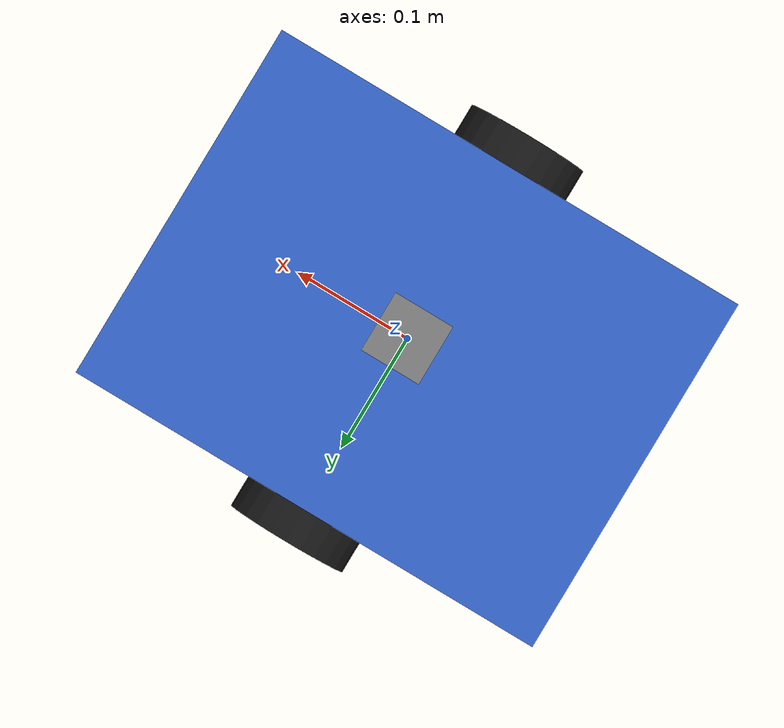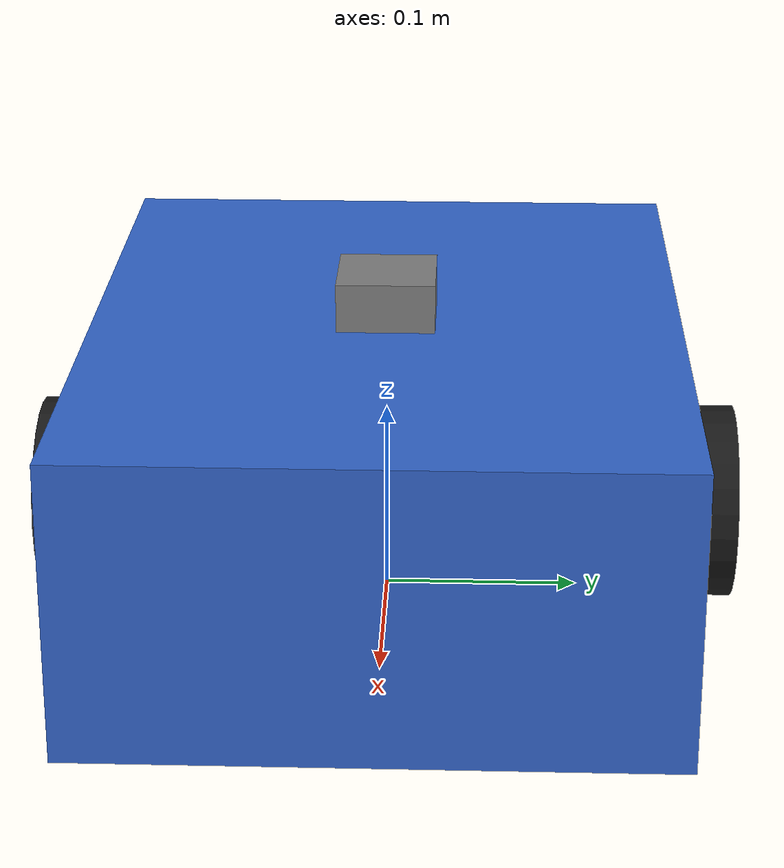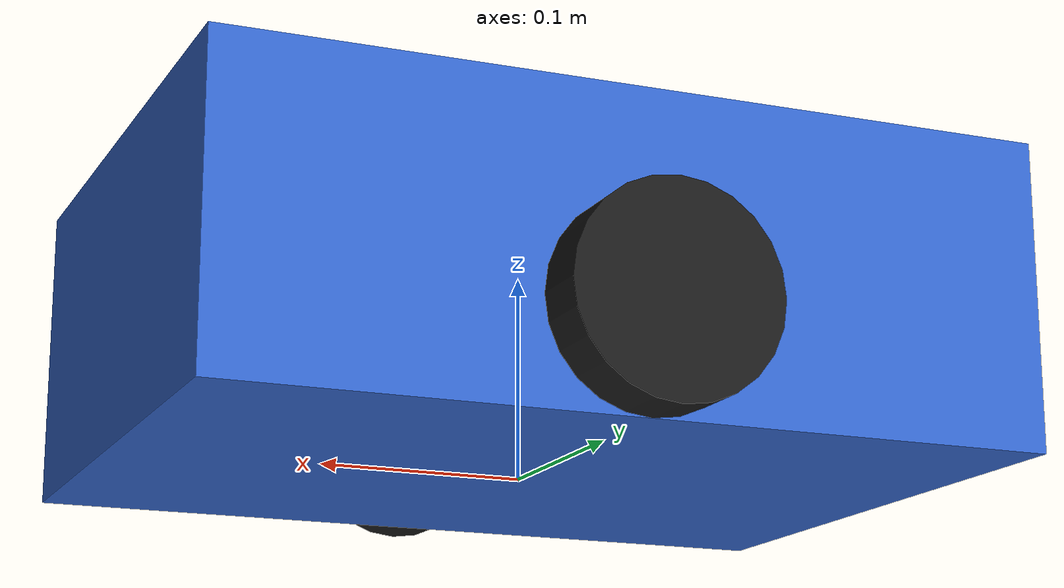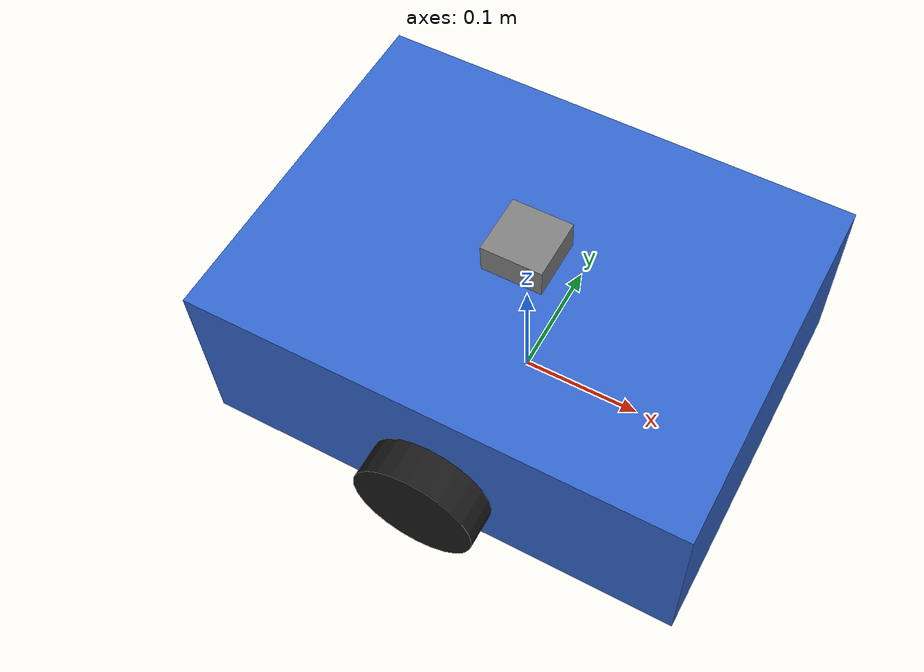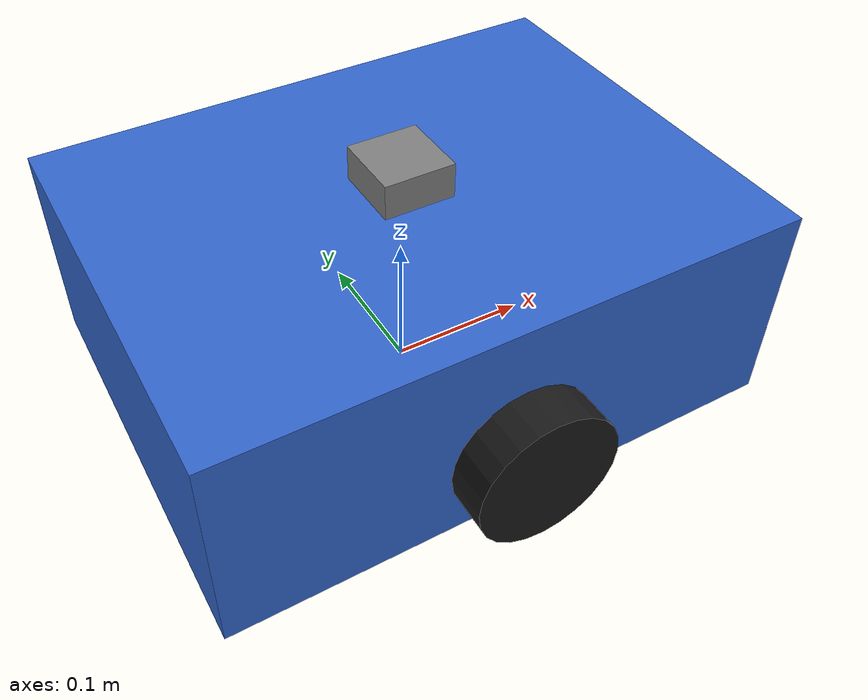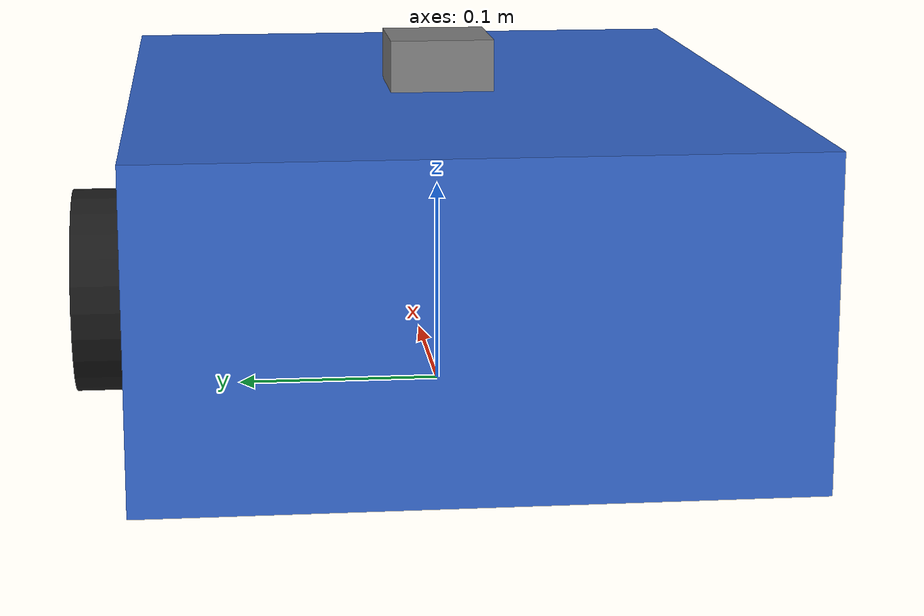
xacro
<?xml version="1.0"?>
<robot name="my_robot" xmlns:xacro="http://www.ros.org/wiki/xacro">
 =====================================================
       PROPERTIES (constants used throughout the robot)
       ===================================================== -->
  <xacro:property name="chassis_length" value="0.4"/>
  <xacro:property name="chassis_width"  value="0.3"/>
  <xacro:property name="chassis_height" value="0.15"/>

  <xacro:property name="wheel_radius"    value="0.05"/>
  <xacro:property name="wheel_thickness" value="0.03"/>
  <xacro:property name="wheel_offset_y"  value="0.165"/>

  <xacro:property name="caster_radius" value="0.025"/>
  <xacro:property name="caster_offset_x" value="0.15"/>

  <xacro:property name="pi" value="3.14159265359"/>

  <!-- =====================================================
       MACRO: wheel (parameterized by name and Y offset)
       ===================================================== -->
  <xacro:macro name="wheel" params="prefix y_offset">
    <link name="${prefix}_wheel_link">
      <visual>
        <geometry>
          <cylinder radius="${wheel_radius}" length="${wheel_thickness}"/>
        </geometry>
        <origin xyz="0 0 0" rpy="${pi/2} 0 0"/>
        <material name="black"/>
      </visual>
    </link>
    <joint name="${prefix}_wheel_joint" type="continuous">
      <parent link="base_link"/>
      <child link="${prefix}_wheel_link"/>
      <origin xyz="0 ${y_offset} ${wheel_radius}" rpy="0 0 0"/>
      <axis xyz="0 1 0"/>
    </joint>
  </xacro:macro>

   <!-- =====================================================
       MATERIALS
       ===================================================== -->
  <material name="blue">
    <color rgba="0.2 0.4 0.8 1.0"/>
  </material>
  <material name="black">
    <color rgba="0.1 0.1 0.1 1.0"/>
  </material>
  <material name="grey">
    <color rgba="0.5 0.5 0.5 1.0"/>
  </material>

  <!-- =====================================================
       CHASSIS
       ===================================================== -->
  <link name="base_link">
    <visual>
      <geometry>
        <box size="${chassis_length} ${chassis_width} ${chassis_height}"/>
      </geometry>
      <origin xyz="0 0 ${chassis_height/2}" rpy="0 0 0"/>
      <material name="blue"/>
    </visual>
  </link>

    <!-- Instantiate both wheels using the macro -->
  <xacro:wheel prefix="left"  y_offset="${wheel_offset_y}"/>
  <xacro:wheel prefix="right" y_offset="${-wheel_offset_y}"/>

  <!-- =====================================================
       CASTER WHEEL
       ===================================================== -->
  <link name="caster_wheel_link">
    <visual>
      <geometry>
        <sphere radius="${caster_radius}"/>
      </geometry>
      <material name="grey"/>
    </visual>
  </link>
  <joint name="caster_wheel_joint" type="fixed">
    <parent link="base_link"/>
    <child link="caster_wheel_link"/>
    <origin xyz="${caster_offset_x} 0 ${caster_radius}" rpy="0 0 0"/>
  </joint>

  <!-- =====================================================
       SENSOR MOUNT
       ===================================================== -->
  <link name="sensor_mount_link">
    <visual>
      <geometry>
        <box size="0.05 0.05 0.05"/>
      </geometry>
      <material name="grey"/>
    </visual>
  </link>
  <joint name="sensor_mount_joint" type="fixed">
    <parent link="base_link"/>
    <child link="sensor_mount_link"/>
    <origin xyz="0 0 ${chassis_height}" rpy="0 0 0"/>
  </joint>

</robot>
